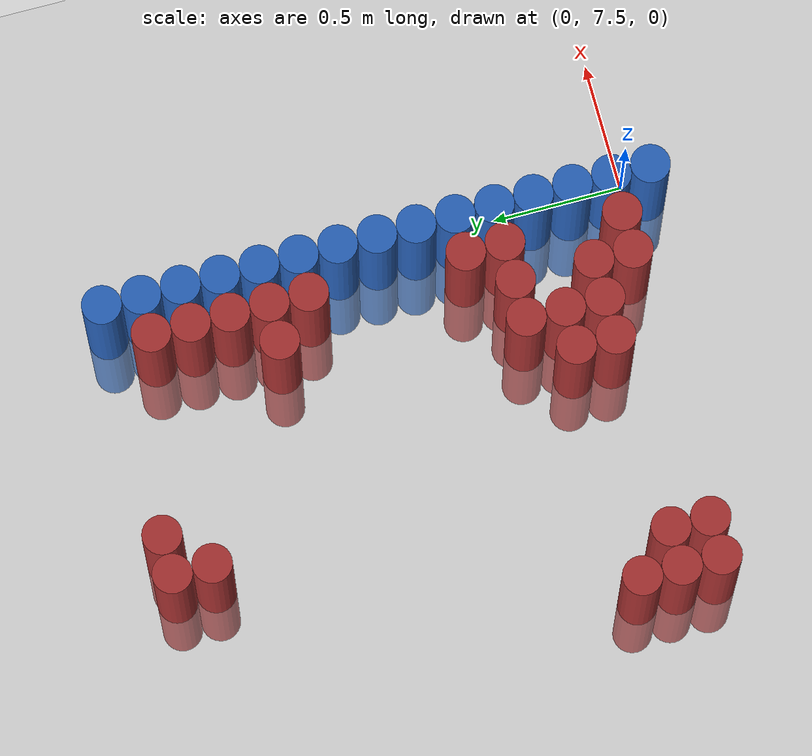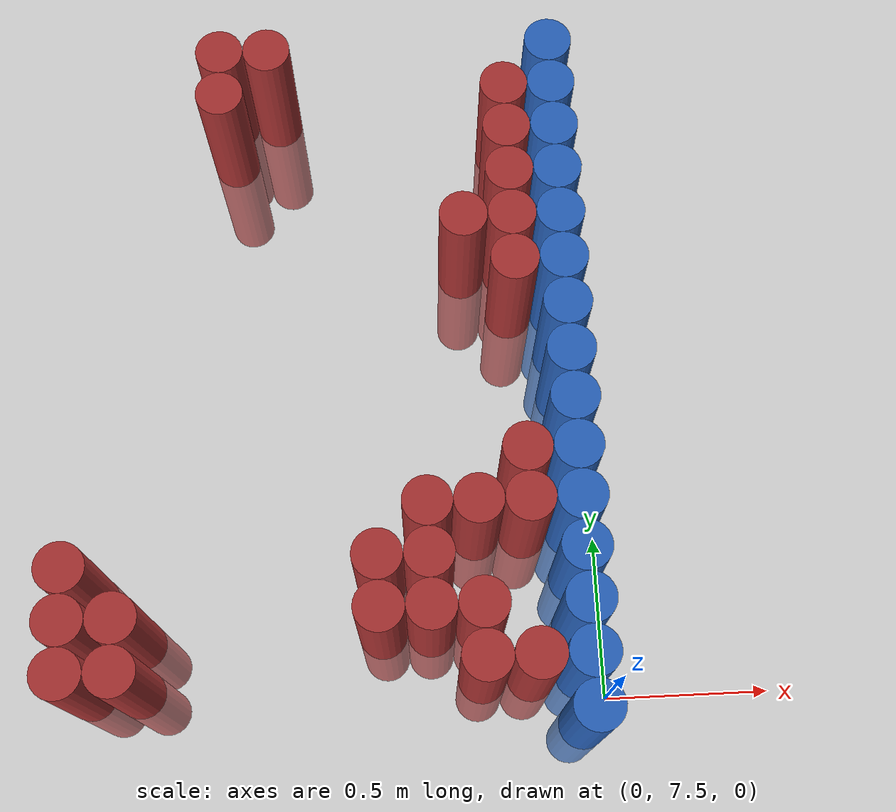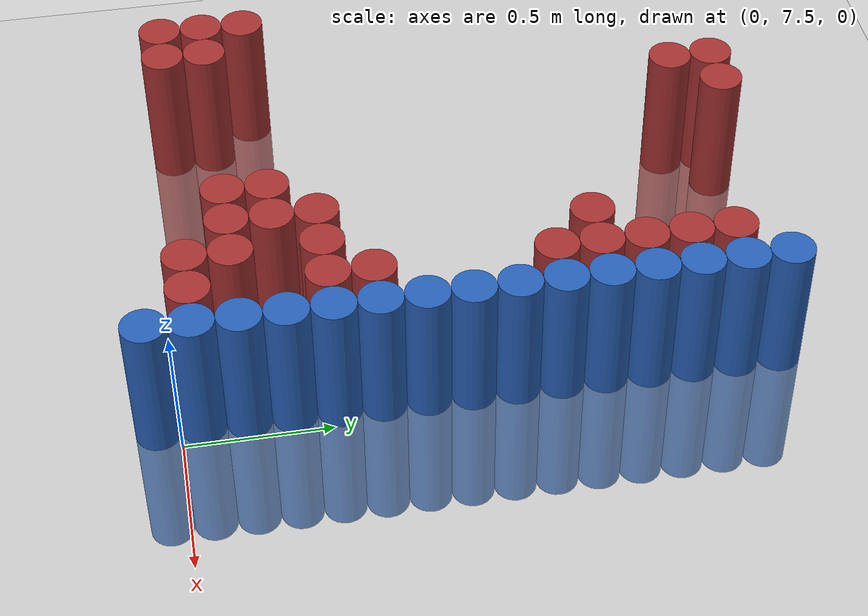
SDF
<sdf version="1.6">
 <world name="default">
  <model name="ground_plane">
   <static>1</static>
   <link name="link">
    <collision name="collision">
     <geometry><plane><normal>0 0 1</normal><size>100 100</size></plane></geometry>
     <surface><friction><ode><mu>100</mu><mu2>50</mu2></ode></friction></surface>
    </collision>
    <visual name="visual">
     <cast_shadows>0</cast_shadows>
     <geometry><plane><normal>0 0 1</normal><size>100 100</size></plane></geometry>
     <material>
      <script><uri>file://media/materials/scripts/gazebo.material</uri><name>Gazebo/Grey</name></script>
     </material>
    </visual>
   </link>
  </model>
  <model name="unit_cylinder_207">
   <static>1</static>
   <pose>-1.575000 7.575000 0.000000 0.000000 0.000000 0.000000</pose>
   <link name="link">
    <inertial>
     <mass>1</mass>
     <inertia><ixx>0.145833</ixx><ixy>0</ixy><ixz>0</ixz><iyy>0.145833</iyy><iyz>0</iyz><izz>0.125</izz></inertia>
    </inertial>
    <collision name="collision">
     <geometry><cylinder><radius>0.075000</radius><length>1</length></cylinder></geometry>
    </collision>
    <visual name="visual">
     <geometry><cylinder><radius>0.075000</radius><length>1</length></cylinder></geometry>
     <material>
      <ambient>0.648000 0.192000 0.192000 1</ambient>
      <diffuse>0.648000 0.192000 0.192000 1</diffuse>
     </material>
     <material>
      <script><name>Gazebo/Grey</name><uri>file://media/materials/scripts/gazebo.material</uri></script>
     </material>
    </visual>
    <sensor name="sensor_contact" type="contact"><contact><collision>collision</collision></contact></sensor>
   </link>
   <plugin filename="gz-sim-touchplugin-system" name="gz::sim::systems::TouchPlugin">
    <target>robot</target>
    <namespace>robot</namespace>
    <time>0.001</time>
    <enabled>true</enabled>
   </plugin>
  </model>
  <model name="unit_cylinder_208">
   <static>1</static>
   <pose>-1.575000 7.725000 0.000000 0.000000 0.000000 0.000000</pose>
   <link name="link">
    <inertial>
     <mass>1</mass>
     <inertia><ixx>0.145833</ixx><ixy>0</ixy><ixz>0</ixz><iyy>0.145833</iyy><iyz>0</iyz><izz>0.125</izz></inertia>
    </inertial>
    <collision name="collision">
     <geometry><cylinder><radius>0.075000</radius><length>1</length></cylinder></geometry>
    </collision>
    <visual name="visual">
     <geometry><cylinder><radius>0.075000</radius><length>1</length></cylinder></geometry>
     <material>
      <ambient>0.648000 0.192000 0.192000 1</ambient>
      <diffuse>0.648000 0.192000 0.192000 1</diffuse>
     </material>
     <material>
      <script><name>Gazebo/Grey</name><uri>file://media/materials/scripts/gazebo.material</uri></script>
     </material>
    </visual>
    <sensor name="sensor_contact" type="contact"><contact><collision>collision</collision></contact></sensor>
   </link>
   <plugin filename="gz-sim-touchplugin-system" name="gz::sim::systems::TouchPlugin">
    <target>robot</target>
    <namespace>robot</namespace>
    <time>0.001</time>
    <enabled>true</enabled>
   </plugin>
  </model>
  <model name="unit_cylinder_209">
   <static>1</static>
   <pose>-1.575000 7.875000 0.000000 0.000000 0.000000 0.000000</pose>
   <link name="link">
    <inertial>
     <mass>1</mass>
     <inertia><ixx>0.145833</ixx><ixy>0</ixy><ixz>0</ixz><iyy>0.145833</iyy><iyz>0</iyz><izz>0.125</izz></inertia>
    </inertial>
    <collision name="collision">
     <geometry><cylinder><radius>0.075000</radius><length>1</length></cylinder></geometry>
    </collision>
    <visual name="visual">
     <geometry><cylinder><radius>0.075000</radius><length>1</length></cylinder></geometry>
     <material>
      <ambient>0.648000 0.192000 0.192000 1</ambient>
      <diffuse>0.648000 0.192000 0.192000 1</diffuse>
     </material>
     <material>
      <script><name>Gazebo/Grey</name><uri>file://media/materials/scripts/gazebo.material</uri></script>
     </material>
    </visual>
    <sensor name="sensor_contact" type="contact"><contact><collision>collision</collision></contact></sensor>
   </link>
   <plugin filename="gz-sim-touchplugin-system" name="gz::sim::systems::TouchPlugin">
    <target>robot</target>
    <namespace>robot</namespace>
    <time>0.001</time>
    <enabled>true</enabled>
   </plugin>
  </model>
  <model name="unit_cylinder_214">
   <static>1</static>
   <pose>-1.425000 7.575000 0.000000 0.000000 0.000000 0.000000</pose>
   <link name="link">
    <inertial>
     <mass>1</mass>
     <inertia><ixx>0.145833</ixx><ixy>0</ixy><ixz>0</ixz><iyy>0.145833</iyy><iyz>0</iyz><izz>0.125</izz></inertia>
    </inertial>
    <collision name="collision">
     <geometry><cylinder><radius>0.075000</radius><length>1</length></cylinder></geometry>
    </collision>
    <visual name="visual">
     <geometry><cylinder><radius>0.075000</radius><length>1</length></cylinder></geometry>
     <material>
      <ambient>0.648000 0.192000 0.192000 1</ambient>
      <diffuse>0.648000 0.192000 0.192000 1</diffuse>
     </material>
     <material>
      <script><name>Gazebo/Grey</name><uri>file://media/materials/scripts/gazebo.material</uri></script>
     </material>
    </visual>
    <sensor name="sensor_contact" type="contact"><contact><collision>collision</collision></contact></sensor>
   </link>
   <plugin filename="gz-sim-touchplugin-system" name="gz::sim::systems::TouchPlugin">
    <target>robot</target>
    <namespace>robot</namespace>
    <time>0.001</time>
    <enabled>true</enabled>
   </plugin>
  </model>
  <model name="unit_cylinder_215">
   <static>1</static>
   <pose>-1.425000 7.725000 0.000000 0.000000 0.000000 0.000000</pose>
   <link name="link">
    <inertial>
     <mass>1</mass>
     <inertia><ixx>0.145833</ixx><ixy>0</ixy><ixz>0</ixz><iyy>0.145833</iyy><iyz>0</iyz><izz>0.125</izz></inertia>
    </inertial>
    <collision name="collision">
     <geometry><cylinder><radius>0.075000</radius><length>1</length></cylinder></geometry>
    </collision>
    <visual name="visual">
     <geometry><cylinder><radius>0.075000</radius><length>1</length></cylinder></geometry>
     <material>
      <ambient>0.648000 0.192000 0.192000 1</ambient>
      <diffuse>0.648000 0.192000 0.192000 1</diffuse>
     </material>
     <material>
      <script><name>Gazebo/Grey</name><uri>file://media/materials/scripts/gazebo.material</uri></script>
     </material>
    </visual>
    <sensor name="sensor_contact" type="contact"><contact><collision>collision</collision></contact></sensor>
   </link>
   <plugin filename="gz-sim-touchplugin-system" name="gz::sim::systems::TouchPlugin">
    <target>robot</target>
    <namespace>robot</namespace>
    <time>0.001</time>
    <enabled>true</enabled>
   </plugin>
  </model>
  <model name="unit_cylinder_223">
   <static>1</static>
   <pose>-1.125000 9.375000 0.000000 0.000000 0.000000 0.000000</pose>
   <link name="link">
    <inertial>
     <mass>1</mass>
     <inertia><ixx>0.145833</ixx><ixy>0</ixy><ixz>0</ixz><iyy>0.145833</iyy><iyz>0</iyz><izz>0.125</izz></inertia>
    </inertial>
    <collision name="collision">
     <geometry><cylinder><radius>0.075000</radius><length>1</length></cylinder></geometry>
    </collision>
    <visual name="visual">
     <geometry><cylinder><radius>0.075000</radius><length>1</length></cylinder></geometry>
     <material>
      <ambient>0.648000 0.192000 0.192000 1</ambient>
      <diffuse>0.648000 0.192000 0.192000 1</diffuse>
     </material>
     <material>
      <script><name>Gazebo/Grey</name><uri>file://media/materials/scripts/gazebo.material</uri></script>
     </material>
    </visual>
    <sensor name="sensor_contact" type="contact"><contact><collision>collision</collision></contact></sensor>
   </link>
   <plugin filename="gz-sim-touchplugin-system" name="gz::sim::systems::TouchPlugin">
    <target>robot</target>
    <namespace>robot</namespace>
    <time>0.001</time>
    <enabled>true</enabled>
   </plugin>
  </model>
  <model name="unit_cylinder_224">
   <static>1</static>
   <pose>-1.125000 9.525000 0.000000 0.000000 0.000000 0.000000</pose>
   <link name="link">
    <inertial>
     <mass>1</mass>
     <inertia><ixx>0.145833</ixx><ixy>0</ixy><ixz>0</ixz><iyy>0.145833</iyy><iyz>0</iyz><izz>0.125</izz></inertia>
    </inertial>
    <collision name="collision">
     <geometry><cylinder><radius>0.075000</radius><length>1</length></cylinder></geometry>
    </collision>
    <visual name="visual">
     <geometry><cylinder><radius>0.075000</radius><length>1</length></cylinder></geometry>
     <material>
      <ambient>0.648000 0.192000 0.192000 1</ambient>
      <diffuse>0.648000 0.192000 0.192000 1</diffuse>
     </material>
     <material>
      <script><name>Gazebo/Grey</name><uri>file://media/materials/scripts/gazebo.material</uri></script>
     </material>
    </visual>
    <sensor name="sensor_contact" type="contact"><contact><collision>collision</collision></contact></sensor>
   </link>
   <plugin filename="gz-sim-touchplugin-system" name="gz::sim::systems::TouchPlugin">
    <target>robot</target>
    <namespace>robot</namespace>
    <time>0.001</time>
    <enabled>true</enabled>
   </plugin>
  </model>
  <model name="unit_cylinder_233">
   <static>1</static>
   <pose>-0.975000 9.525000 0.000000 0.000000 0.000000 0.000000</pose>
   <link name="link">
    <inertial>
     <mass>1</mass>
     <inertia><ixx>0.145833</ixx><ixy>0</ixy><ixz>0</ixz><iyy>0.145833</iyy><iyz>0</iyz><izz>0.125</izz></inertia>
    </inertial>
    <collision name="collision">
     <geometry><cylinder><radius>0.075000</radius><length>1</length></cylinder></geometry>
    </collision>
    <visual name="visual">
     <geometry><cylinder><radius>0.075000</radius><length>1</length></cylinder></geometry>
     <material>
      <ambient>0.648000 0.192000 0.192000 1</ambient>
      <diffuse>0.648000 0.192000 0.192000 1</diffuse>
     </material>
     <material>
      <script><name>Gazebo/Grey</name><uri>file://media/materials/scripts/gazebo.material</uri></script>
     </material>
    </visual>
    <sensor name="sensor_contact" type="contact"><contact><collision>collision</collision></contact></sensor>
   </link>
   <plugin filename="gz-sim-touchplugin-system" name="gz::sim::systems::TouchPlugin">
    <target>robot</target>
    <namespace>robot</namespace>
    <time>0.001</time>
    <enabled>true</enabled>
   </plugin>
  </model>
  <model name="unit_cylinder_250">
   <static>1</static>
   <pose>-0.675000 7.725000 0.000000 0.000000 0.000000 0.000000</pose>
   <link name="link">
    <inertial>
     <mass>1</mass>
     <inertia><ixx>0.145833</ixx><ixy>0</ixy><ixz>0</ixz><iyy>0.145833</iyy><iyz>0</iyz><izz>0.125</izz></inertia>
    </inertial>
    <collision name="collision">
     <geometry><cylinder><radius>0.075000</radius><length>1</length></cylinder></geometry>
    </collision>
    <visual name="visual">
     <geometry><cylinder><radius>0.075000</radius><length>1</length></cylinder></geometry>
     <material>
      <ambient>0.648000 0.192000 0.192000 1</ambient>
      <diffuse>0.648000 0.192000 0.192000 1</diffuse>
     </material>
     <material>
      <script><name>Gazebo/Grey</name><uri>file://media/materials/scripts/gazebo.material</uri></script>
     </material>
    </visual>
    <sensor name="sensor_contact" type="contact"><contact><collision>collision</collision></contact></sensor>
   </link>
   <plugin filename="gz-sim-touchplugin-system" name="gz::sim::systems::TouchPlugin">
    <target>robot</target>
    <namespace>robot</namespace>
    <time>0.001</time>
    <enabled>true</enabled>
   </plugin>
  </model>
  <model name="unit_cylinder_251">
   <static>1</static>
   <pose>-0.675000 7.875000 0.000000 0.000000 0.000000 0.000000</pose>
   <link name="link">
    <inertial>
     <mass>1</mass>
     <inertia><ixx>0.145833</ixx><ixy>0</ixy><ixz>0</ixz><iyy>0.145833</iyy><iyz>0</iyz><izz>0.125</izz></inertia>
    </inertial>
    <collision name="collision">
     <geometry><cylinder><radius>0.075000</radius><length>1</length></cylinder></geometry>
    </collision>
    <visual name="visual">
     <geometry><cylinder><radius>0.075000</radius><length>1</length></cylinder></geometry>
     <material>
      <ambient>0.648000 0.192000 0.192000 1</ambient>
      <diffuse>0.648000 0.192000 0.192000 1</diffuse>
     </material>
     <material>
      <script><name>Gazebo/Grey</name><uri>file://media/materials/scripts/gazebo.material</uri></script>
     </material>
    </visual>
    <sensor name="sensor_contact" type="contact"><contact><collision>collision</collision></contact></sensor>
   </link>
   <plugin filename="gz-sim-touchplugin-system" name="gz::sim::systems::TouchPlugin">
    <target>robot</target>
    <namespace>robot</namespace>
    <time>0.001</time>
    <enabled>true</enabled>
   </plugin>
  </model>
  <model name="unit_cylinder_255">
   <static>1</static>
   <pose>-0.525000 7.725000 0.000000 0.000000 0.000000 0.000000</pose>
   <link name="link">
    <inertial>
     <mass>1</mass>
     <inertia><ixx>0.145833</ixx><ixy>0</ixy><ixz>0</ixz><iyy>0.145833</iyy><iyz>0</iyz><izz>0.125</izz></inertia>
    </inertial>
    <collision name="collision">
     <geometry><cylinder><radius>0.075000</radius><length>1</length></cylinder></geometry>
    </collision>
    <visual name="visual">
     <geometry><cylinder><radius>0.075000</radius><length>1</length></cylinder></geometry>
     <material>
      <ambient>0.648000 0.192000 0.192000 1</ambient>
      <diffuse>0.648000 0.192000 0.192000 1</diffuse>
     </material>
     <material>
      <script><name>Gazebo/Grey</name><uri>file://media/materials/scripts/gazebo.material</uri></script>
     </material>
    </visual>
    <sensor name="sensor_contact" type="contact"><contact><collision>collision</collision></contact></sensor>
   </link>
   <plugin filename="gz-sim-touchplugin-system" name="gz::sim::systems::TouchPlugin">
    <target>robot</target>
    <namespace>robot</namespace>
    <time>0.001</time>
    <enabled>true</enabled>
   </plugin>
  </model>
  <model name="unit_cylinder_256">
   <static>1</static>
   <pose>-0.525000 7.875000 0.000000 0.000000 0.000000 0.000000</pose>
   <link name="link">
    <inertial>
     <mass>1</mass>
     <inertia><ixx>0.145833</ixx><ixy>0</ixy><ixz>0</ixz><iyy>0.145833</iyy><iyz>0</iyz><izz>0.125</izz></inertia>
    </inertial>
    <collision name="collision">
     <geometry><cylinder><radius>0.075000</radius><length>1</length></cylinder></geometry>
    </collision>
    <visual name="visual">
     <geometry><cylinder><radius>0.075000</radius><length>1</length></cylinder></geometry>
     <material>
      <ambient>0.648000 0.192000 0.192000 1</ambient>
      <diffuse>0.648000 0.192000 0.192000 1</diffuse>
     </material>
     <material>
      <script><name>Gazebo/Grey</name><uri>file://media/materials/scripts/gazebo.material</uri></script>
     </material>
    </visual>
    <sensor name="sensor_contact" type="contact"><contact><collision>collision</collision></contact></sensor>
   </link>
   <plugin filename="gz-sim-touchplugin-system" name="gz::sim::systems::TouchPlugin">
    <target>robot</target>
    <namespace>robot</namespace>
    <time>0.001</time>
    <enabled>true</enabled>
   </plugin>
  </model>
  <model name="unit_cylinder_257">
   <static>1</static>
   <pose>-0.525000 8.025000 0.000000 0.000000 0.000000 0.000000</pose>
   <link name="link">
    <inertial>
     <mass>1</mass>
     <inertia><ixx>0.145833</ixx><ixy>0</ixy><ixz>0</ixz><iyy>0.145833</iyy><iyz>0</iyz><izz>0.125</izz></inertia>
    </inertial>
    <collision name="collision">
     <geometry><cylinder><radius>0.075000</radius><length>1</length></cylinder></geometry>
    </collision>
    <visual name="visual">
     <geometry><cylinder><radius>0.075000</radius><length>1</length></cylinder></geometry>
     <material>
      <ambient>0.648000 0.192000 0.192000 1</ambient>
      <diffuse>0.648000 0.192000 0.192000 1</diffuse>
     </material>
     <material>
      <script><name>Gazebo/Grey</name><uri>file://media/materials/scripts/gazebo.material</uri></script>
     </material>
    </visual>
    <sensor name="sensor_contact" type="contact"><contact><collision>collision</collision></contact></sensor>
   </link>
   <plugin filename="gz-sim-touchplugin-system" name="gz::sim::systems::TouchPlugin">
    <target>robot</target>
    <namespace>robot</namespace>
    <time>0.001</time>
    <enabled>true</enabled>
   </plugin>
  </model>
  <model name="unit_cylinder_263">
   <static>1</static>
   <pose>-0.375000 7.575000 0.000000 0.000000 0.000000 0.000000</pose>
   <link name="link">
    <inertial>
     <mass>1</mass>
     <inertia><ixx>0.145833</ixx><ixy>0</ixy><ixz>0</ixz><iyy>0.145833</iyy><iyz>0</iyz><izz>0.125</izz></inertia>
    </inertial>
    <collision name="collision">
     <geometry><cylinder><radius>0.075000</radius><length>1</length></cylinder></geometry>
    </collision>
    <visual name="visual">
     <geometry><cylinder><radius>0.075000</radius><length>1</length></cylinder></geometry>
     <material>
      <ambient>0.648000 0.192000 0.192000 1</ambient>
      <diffuse>0.648000 0.192000 0.192000 1</diffuse>
     </material>
     <material>
      <script><name>Gazebo/Grey</name><uri>file://media/materials/scripts/gazebo.material</uri></script>
     </material>
    </visual>
    <sensor name="sensor_contact" type="contact"><contact><collision>collision</collision></contact></sensor>
   </link>
   <plugin filename="gz-sim-touchplugin-system" name="gz::sim::systems::TouchPlugin">
    <target>robot</target>
    <namespace>robot</namespace>
    <time>0.001</time>
    <enabled>true</enabled>
   </plugin>
  </model>
  <model name="unit_cylinder_264">
   <static>1</static>
   <pose>-0.375000 7.725000 0.000000 0.000000 0.000000 0.000000</pose>
   <link name="link">
    <inertial>
     <mass>1</mass>
     <inertia><ixx>0.145833</ixx><ixy>0</ixy><ixz>0</ixz><iyy>0.145833</iyy><iyz>0</iyz><izz>0.125</izz></inertia>
    </inertial>
    <collision name="collision">
     <geometry><cylinder><radius>0.075000</radius><length>1</length></cylinder></geometry>
    </collision>
    <visual name="visual">
     <geometry><cylinder><radius>0.075000</radius><length>1</length></cylinder></geometry>
     <material>
      <ambient>0.648000 0.192000 0.192000 1</ambient>
      <diffuse>0.648000 0.192000 0.192000 1</diffuse>
     </material>
     <material>
      <script><name>Gazebo/Grey</name><uri>file://media/materials/scripts/gazebo.material</uri></script>
     </material>
    </visual>
    <sensor name="sensor_contact" type="contact"><contact><collision>collision</collision></contact></sensor>
   </link>
   <plugin filename="gz-sim-touchplugin-system" name="gz::sim::systems::TouchPlugin">
    <target>robot</target>
    <namespace>robot</namespace>
    <time>0.001</time>
    <enabled>true</enabled>
   </plugin>
  </model>
  <model name="unit_cylinder_265">
   <static>1</static>
   <pose>-0.375000 8.025000 0.000000 0.000000 0.000000 0.000000</pose>
   <link name="link">
    <inertial>
     <mass>1</mass>
     <inertia><ixx>0.145833</ixx><ixy>0</ixy><ixz>0</ixz><iyy>0.145833</iyy><iyz>0</iyz><izz>0.125</izz></inertia>
    </inertial>
    <collision name="collision">
     <geometry><cylinder><radius>0.075000</radius><length>1</length></cylinder></geometry>
    </collision>
    <visual name="visual">
     <geometry><cylinder><radius>0.075000</radius><length>1</length></cylinder></geometry>
     <material>
      <ambient>0.648000 0.192000 0.192000 1</ambient>
      <diffuse>0.648000 0.192000 0.192000 1</diffuse>
     </material>
     <material>
      <script><name>Gazebo/Grey</name><uri>file://media/materials/scripts/gazebo.material</uri></script>
     </material>
    </visual>
    <sensor name="sensor_contact" type="contact"><contact><collision>collision</collision></contact></sensor>
   </link>
   <plugin filename="gz-sim-touchplugin-system" name="gz::sim::systems::TouchPlugin">
    <target>robot</target>
    <namespace>robot</namespace>
    <time>0.001</time>
    <enabled>true</enabled>
   </plugin>
  </model>
  <model name="unit_cylinder_266">
   <static>1</static>
   <pose>-0.375000 8.925000 0.000000 0.000000 0.000000 0.000000</pose>
   <link name="link">
    <inertial>
     <mass>1</mass>
     <inertia><ixx>0.145833</ixx><ixy>0</ixy><ixz>0</ixz><iyy>0.145833</iyy><iyz>0</iyz><izz>0.125</izz></inertia>
    </inertial>
    <collision name="collision">
     <geometry><cylinder><radius>0.075000</radius><length>1</length></cylinder></geometry>
    </collision>
    <visual name="visual">
     <geometry><cylinder><radius>0.075000</radius><length>1</length></cylinder></geometry>
     <material>
      <ambient>0.648000 0.192000 0.192000 1</ambient>
      <diffuse>0.648000 0.192000 0.192000 1</diffuse>
     </material>
     <material>
      <script><name>Gazebo/Grey</name><uri>file://media/materials/scripts/gazebo.material</uri></script>
     </material>
    </visual>
    <sensor name="sensor_contact" type="contact"><contact><collision>collision</collision></contact></sensor>
   </link>
   <plugin filename="gz-sim-touchplugin-system" name="gz::sim::systems::TouchPlugin">
    <target>robot</target>
    <namespace>robot</namespace>
    <time>0.001</time>
    <enabled>true</enabled>
   </plugin>
  </model>
  <model name="unit_cylinder_277">
   <static>1</static>
   <pose>-0.225000 7.575000 0.000000 0.000000 0.000000 0.000000</pose>
   <link name="link">
    <inertial>
     <mass>1</mass>
     <inertia><ixx>0.145833</ixx><ixy>0</ixy><ixz>0</ixz><iyy>0.145833</iyy><iyz>0</iyz><izz>0.125</izz></inertia>
    </inertial>
    <collision name="collision">
     <geometry><cylinder><radius>0.075000</radius><length>1</length></cylinder></geometry>
    </collision>
    <visual name="visual">
     <geometry><cylinder><radius>0.075000</radius><length>1</length></cylinder></geometry>
     <material>
      <ambient>0.648000 0.192000 0.192000 1</ambient>
      <diffuse>0.648000 0.192000 0.192000 1</diffuse>
     </material>
     <material>
      <script><name>Gazebo/Grey</name><uri>file://media/materials/scripts/gazebo.material</uri></script>
     </material>
    </visual>
    <sensor name="sensor_contact" type="contact"><contact><collision>collision</collision></contact></sensor>
   </link>
   <plugin filename="gz-sim-touchplugin-system" name="gz::sim::systems::TouchPlugin">
    <target>robot</target>
    <namespace>robot</namespace>
    <time>0.001</time>
    <enabled>true</enabled>
   </plugin>
  </model>
  <model name="unit_cylinder_278">
   <static>1</static>
   <pose>-0.225000 8.025000 0.000000 0.000000 0.000000 0.000000</pose>
   <link name="link">
    <inertial>
     <mass>1</mass>
     <inertia><ixx>0.145833</ixx><ixy>0</ixy><ixz>0</ixz><iyy>0.145833</iyy><iyz>0</iyz><izz>0.125</izz></inertia>
    </inertial>
    <collision name="collision">
     <geometry><cylinder><radius>0.075000</radius><length>1</length></cylinder></geometry>
    </collision>
    <visual name="visual">
     <geometry><cylinder><radius>0.075000</radius><length>1</length></cylinder></geometry>
     <material>
      <ambient>0.648000 0.192000 0.192000 1</ambient>
      <diffuse>0.648000 0.192000 0.192000 1</diffuse>
     </material>
     <material>
      <script><name>Gazebo/Grey</name><uri>file://media/materials/scripts/gazebo.material</uri></script>
     </material>
    </visual>
    <sensor name="sensor_contact" type="contact"><contact><collision>collision</collision></contact></sensor>
   </link>
   <plugin filename="gz-sim-touchplugin-system" name="gz::sim::systems::TouchPlugin">
    <target>robot</target>
    <namespace>robot</namespace>
    <time>0.001</time>
    <enabled>true</enabled>
   </plugin>
  </model>
  <model name="unit_cylinder_279">
   <static>1</static>
   <pose>-0.225000 8.175000 0.000000 0.000000 0.000000 0.000000</pose>
   <link name="link">
    <inertial>
     <mass>1</mass>
     <inertia><ixx>0.145833</ixx><ixy>0</ixy><ixz>0</ixz><iyy>0.145833</iyy><iyz>0</iyz><izz>0.125</izz></inertia>
    </inertial>
    <collision name="collision">
     <geometry><cylinder><radius>0.075000</radius><length>1</length></cylinder></geometry>
    </collision>
    <visual name="visual">
     <geometry><cylinder><radius>0.075000</radius><length>1</length></cylinder></geometry>
     <material>
      <ambient>0.648000 0.192000 0.192000 1</ambient>
      <diffuse>0.648000 0.192000 0.192000 1</diffuse>
     </material>
     <material>
      <script><name>Gazebo/Grey</name><uri>file://media/materials/scripts/gazebo.material</uri></script>
     </material>
    </visual>
    <sensor name="sensor_contact" type="contact"><contact><collision>collision</collision></contact></sensor>
   </link>
   <plugin filename="gz-sim-touchplugin-system" name="gz::sim::systems::TouchPlugin">
    <target>robot</target>
    <namespace>robot</namespace>
    <time>0.001</time>
    <enabled>true</enabled>
   </plugin>
  </model>
  <model name="unit_cylinder_280">
   <static>1</static>
   <pose>-0.225000 8.775000 0.000000 0.000000 0.000000 0.000000</pose>
   <link name="link">
    <inertial>
     <mass>1</mass>
     <inertia><ixx>0.145833</ixx><ixy>0</ixy><ixz>0</ixz><iyy>0.145833</iyy><iyz>0</iyz><izz>0.125</izz></inertia>
    </inertial>
    <collision name="collision">
     <geometry><cylinder><radius>0.075000</radius><length>1</length></cylinder></geometry>
    </collision>
    <visual name="visual">
     <geometry><cylinder><radius>0.075000</radius><length>1</length></cylinder></geometry>
     <material>
      <ambient>0.648000 0.192000 0.192000 1</ambient>
      <diffuse>0.648000 0.192000 0.192000 1</diffuse>
     </material>
     <material>
      <script><name>Gazebo/Grey</name><uri>file://media/materials/scripts/gazebo.material</uri></script>
     </material>
    </visual>
    <sensor name="sensor_contact" type="contact"><contact><collision>collision</collision></contact></sensor>
   </link>
   <plugin filename="gz-sim-touchplugin-system" name="gz::sim::systems::TouchPlugin">
    <target>robot</target>
    <namespace>robot</namespace>
    <time>0.001</time>
    <enabled>true</enabled>
   </plugin>
  </model>
  <model name="unit_cylinder_281">
   <static>1</static>
   <pose>-0.225000 8.925000 0.000000 0.000000 0.000000 0.000000</pose>
   <link name="link">
    <inertial>
     <mass>1</mass>
     <inertia><ixx>0.145833</ixx><ixy>0</ixy><ixz>0</ixz><iyy>0.145833</iyy><iyz>0</iyz><izz>0.125</izz></inertia>
    </inertial>
    <collision name="collision">
     <geometry><cylinder><radius>0.075000</radius><length>1</length></cylinder></geometry>
    </collision>
    <visual name="visual">
     <geometry><cylinder><radius>0.075000</radius><length>1</length></cylinder></geometry>
     <material>
      <ambient>0.648000 0.192000 0.192000 1</ambient>
      <diffuse>0.648000 0.192000 0.192000 1</diffuse>
     </material>
     <material>
      <script><name>Gazebo/Grey</name><uri>file://media/materials/scripts/gazebo.material</uri></script>
     </material>
    </visual>
    <sensor name="sensor_contact" type="contact"><contact><collision>collision</collision></contact></sensor>
   </link>
   <plugin filename="gz-sim-touchplugin-system" name="gz::sim::systems::TouchPlugin">
    <target>robot</target>
    <namespace>robot</namespace>
    <time>0.001</time>
    <enabled>true</enabled>
   </plugin>
  </model>
  <model name="unit_cylinder_282">
   <static>1</static>
   <pose>-0.225000 9.075000 0.000000 0.000000 0.000000 0.000000</pose>
   <link name="link">
    <inertial>
     <mass>1</mass>
     <inertia><ixx>0.145833</ixx><ixy>0</ixy><ixz>0</ixz><iyy>0.145833</iyy><iyz>0</iyz><izz>0.125</izz></inertia>
    </inertial>
    <collision name="collision">
     <geometry><cylinder><radius>0.075000</radius><length>1</length></cylinder></geometry>
    </collision>
    <visual name="visual">
     <geometry><cylinder><radius>0.075000</radius><length>1</length></cylinder></geometry>
     <material>
      <ambient>0.648000 0.192000 0.192000 1</ambient>
      <diffuse>0.648000 0.192000 0.192000 1</diffuse>
     </material>
     <material>
      <script><name>Gazebo/Grey</name><uri>file://media/materials/scripts/gazebo.material</uri></script>
     </material>
    </visual>
    <sensor name="sensor_contact" type="contact"><contact><collision>collision</collision></contact></sensor>
   </link>
   <plugin filename="gz-sim-touchplugin-system" name="gz::sim::systems::TouchPlugin">
    <target>robot</target>
    <namespace>robot</namespace>
    <time>0.001</time>
    <enabled>true</enabled>
   </plugin>
  </model>
  <model name="unit_cylinder_283">
   <static>1</static>
   <pose>-0.225000 9.225000 0.000000 0.000000 0.000000 0.000000</pose>
   <link name="link">
    <inertial>
     <mass>1</mass>
     <inertia><ixx>0.145833</ixx><ixy>0</ixy><ixz>0</ixz><iyy>0.145833</iyy><iyz>0</iyz><izz>0.125</izz></inertia>
    </inertial>
    <collision name="collision">
     <geometry><cylinder><radius>0.075000</radius><length>1</length></cylinder></geometry>
    </collision>
    <visual name="visual">
     <geometry><cylinder><radius>0.075000</radius><length>1</length></cylinder></geometry>
     <material>
      <ambient>0.648000 0.192000 0.192000 1</ambient>
      <diffuse>0.648000 0.192000 0.192000 1</diffuse>
     </material>
     <material>
      <script><name>Gazebo/Grey</name><uri>file://media/materials/scripts/gazebo.material</uri></script>
     </material>
    </visual>
    <sensor name="sensor_contact" type="contact"><contact><collision>collision</collision></contact></sensor>
   </link>
   <plugin filename="gz-sim-touchplugin-system" name="gz::sim::systems::TouchPlugin">
    <target>robot</target>
    <namespace>robot</namespace>
    <time>0.001</time>
    <enabled>true</enabled>
   </plugin>
  </model>
  <model name="unit_cylinder_284">
   <static>1</static>
   <pose>-0.225000 9.375000 0.000000 0.000000 0.000000 0.000000</pose>
   <link name="link">
    <inertial>
     <mass>1</mass>
     <inertia><ixx>0.145833</ixx><ixy>0</ixy><ixz>0</ixz><iyy>0.145833</iyy><iyz>0</iyz><izz>0.125</izz></inertia>
    </inertial>
    <collision name="collision">
     <geometry><cylinder><radius>0.075000</radius><length>1</length></cylinder></geometry>
    </collision>
    <visual name="visual">
     <geometry><cylinder><radius>0.075000</radius><length>1</length></cylinder></geometry>
     <material>
      <ambient>0.648000 0.192000 0.192000 1</ambient>
      <diffuse>0.648000 0.192000 0.192000 1</diffuse>
     </material>
     <material>
      <script><name>Gazebo/Grey</name><uri>file://media/materials/scripts/gazebo.material</uri></script>
     </material>
    </visual>
    <sensor name="sensor_contact" type="contact"><contact><collision>collision</collision></contact></sensor>
   </link>
   <plugin filename="gz-sim-touchplugin-system" name="gz::sim::systems::TouchPlugin">
    <target>robot</target>
    <namespace>robot</namespace>
    <time>0.001</time>
    <enabled>true</enabled>
   </plugin>
  </model>
  <model name="unit_cylinder_300">
   <static>1</static>
   <pose>-0.075000 7.425000 0.000000 0.000000 0.000000 0.000000</pose>
   <link name="link">
    <inertial>
     <mass>1</mass>
     <inertia><ixx>0.145833</ixx><ixy>0</ixy><ixz>0</ixz><iyy>0.145833</iyy><iyz>0</iyz><izz>0.125</izz></inertia>
    </inertial>
    <collision name="collision">
     <geometry><cylinder><radius>0.075000</radius><length>1</length></cylinder></geometry>
    </collision>
    <visual name="visual">
     <geometry><cylinder><radius>0.075000</radius><length>1</length></cylinder></geometry>
     <material>
      <ambient>0.152000 0.379000 0.720000 1</ambient>
      <diffuse>0.152000 0.379000 0.720000 1</diffuse>
     </material>
     <material>
      <script><name>Gazebo/Grey</name><uri>file://media/materials/scripts/gazebo.material</uri></script>
     </material>
    </visual>
    <sensor name="sensor_contact" type="contact"><contact><collision>collision</collision></contact></sensor>
   </link>
   <plugin filename="gz-sim-touchplugin-system" name="gz::sim::systems::TouchPlugin">
    <target>robot</target>
    <namespace>robot</namespace>
    <time>0.001</time>
    <enabled>true</enabled>
   </plugin>
  </model>
  <model name="unit_cylinder_301">
   <static>1</static>
   <pose>-0.075000 7.575000 0.000000 0.000000 0.000000 0.000000</pose>
   <link name="link">
    <inertial>
     <mass>1</mass>
     <inertia><ixx>0.145833</ixx><ixy>0</ixy><ixz>0</ixz><iyy>0.145833</iyy><iyz>0</iyz><izz>0.125</izz></inertia>
    </inertial>
    <collision name="collision">
     <geometry><cylinder><radius>0.075000</radius><length>1</length></cylinder></geometry>
    </collision>
    <visual name="visual">
     <geometry><cylinder><radius>0.075000</radius><length>1</length></cylinder></geometry>
     <material>
      <ambient>0.152000 0.379000 0.720000 1</ambient>
      <diffuse>0.152000 0.379000 0.720000 1</diffuse>
     </material>
     <material>
      <script><name>Gazebo/Grey</name><uri>file://media/materials/scripts/gazebo.material</uri></script>
     </material>
    </visual>
    <sensor name="sensor_contact" type="contact"><contact><collision>collision</collision></contact></sensor>
   </link>
   <plugin filename="gz-sim-touchplugin-system" name="gz::sim::systems::TouchPlugin">
    <target>robot</target>
    <namespace>robot</namespace>
    <time>0.001</time>
    <enabled>true</enabled>
   </plugin>
  </model>
  <model name="unit_cylinder_302">
   <static>1</static>
   <pose>-0.075000 7.725000 0.000000 0.000000 0.000000 0.000000</pose>
   <link name="link">
    <inertial>
     <mass>1</mass>
     <inertia><ixx>0.145833</ixx><ixy>0</ixy><ixz>0</ixz><iyy>0.145833</iyy><iyz>0</iyz><izz>0.125</izz></inertia>
    </inertial>
    <collision name="collision">
     <geometry><cylinder><radius>0.075000</radius><length>1</length></cylinder></geometry>
    </collision>
    <visual name="visual">
     <geometry><cylinder><radius>0.075000</radius><length>1</length></cylinder></geometry>
     <material>
      <ambient>0.152000 0.379000 0.720000 1</ambient>
      <diffuse>0.152000 0.379000 0.720000 1</diffuse>
     </material>
     <material>
      <script><name>Gazebo/Grey</name><uri>file://media/materials/scripts/gazebo.material</uri></script>
     </material>
    </visual>
    <sensor name="sensor_contact" type="contact"><contact><collision>collision</collision></contact></sensor>
   </link>
   <plugin filename="gz-sim-touchplugin-system" name="gz::sim::systems::TouchPlugin">
    <target>robot</target>
    <namespace>robot</namespace>
    <time>0.001</time>
    <enabled>true</enabled>
   </plugin>
  </model>
  <model name="unit_cylinder_303">
   <static>1</static>
   <pose>-0.075000 7.875000 0.000000 0.000000 0.000000 0.000000</pose>
   <link name="link">
    <inertial>
     <mass>1</mass>
     <inertia><ixx>0.145833</ixx><ixy>0</ixy><ixz>0</ixz><iyy>0.145833</iyy><iyz>0</iyz><izz>0.125</izz></inertia>
    </inertial>
    <collision name="collision">
     <geometry><cylinder><radius>0.075000</radius><length>1</length></cylinder></geometry>
    </collision>
    <visual name="visual">
     <geometry><cylinder><radius>0.075000</radius><length>1</length></cylinder></geometry>
     <material>
      <ambient>0.152000 0.379000 0.720000 1</ambient>
      <diffuse>0.152000 0.379000 0.720000 1</diffuse>
     </material>
     <material>
      <script><name>Gazebo/Grey</name><uri>file://media/materials/scripts/gazebo.material</uri></script>
     </material>
    </visual>
    <sensor name="sensor_contact" type="contact"><contact><collision>collision</collision></contact></sensor>
   </link>
   <plugin filename="gz-sim-touchplugin-system" name="gz::sim::systems::TouchPlugin">
    <target>robot</target>
    <namespace>robot</namespace>
    <time>0.001</time>
    <enabled>true</enabled>
   </plugin>
  </model>
  <model name="unit_cylinder_304">
   <static>1</static>
   <pose>-0.075000 8.025000 0.000000 0.000000 0.000000 0.000000</pose>
   <link name="link">
    <inertial>
     <mass>1</mass>
     <inertia><ixx>0.145833</ixx><ixy>0</ixy><ixz>0</ixz><iyy>0.145833</iyy><iyz>0</iyz><izz>0.125</izz></inertia>
    </inertial>
    <collision name="collision">
     <geometry><cylinder><radius>0.075000</radius><length>1</length></cylinder></geometry>
    </collision>
    <visual name="visual">
     <geometry><cylinder><radius>0.075000</radius><length>1</length></cylinder></geometry>
     <material>
      <ambient>0.152000 0.379000 0.720000 1</ambient>
      <diffuse>0.152000 0.379000 0.720000 1</diffuse>
     </material>
     <material>
      <script><name>Gazebo/Grey</name><uri>file://media/materials/scripts/gazebo.material</uri></script>
     </material>
    </visual>
    <sensor name="sensor_contact" type="contact"><contact><collision>collision</collision></contact></sensor>
   </link>
   <plugin filename="gz-sim-touchplugin-system" name="gz::sim::systems::TouchPlugin">
    <target>robot</target>
    <namespace>robot</namespace>
    <time>0.001</time>
    <enabled>true</enabled>
   </plugin>
  </model>
  <model name="unit_cylinder_305">
   <static>1</static>
   <pose>-0.075000 8.175000 0.000000 0.000000 0.000000 0.000000</pose>
   <link name="link">
    <inertial>
     <mass>1</mass>
     <inertia><ixx>0.145833</ixx><ixy>0</ixy><ixz>0</ixz><iyy>0.145833</iyy><iyz>0</iyz><izz>0.125</izz></inertia>
    </inertial>
    <collision name="collision">
     <geometry><cylinder><radius>0.075000</radius><length>1</length></cylinder></geometry>
    </collision>
    <visual name="visual">
     <geometry><cylinder><radius>0.075000</radius><length>1</length></cylinder></geometry>
     <material>
      <ambient>0.152000 0.379000 0.720000 1</ambient>
      <diffuse>0.152000 0.379000 0.720000 1</diffuse>
     </material>
     <material>
      <script><name>Gazebo/Grey</name><uri>file://media/materials/scripts/gazebo.material</uri></script>
     </material>
    </visual>
    <sensor name="sensor_contact" type="contact"><contact><collision>collision</collision></contact></sensor>
   </link>
   <plugin filename="gz-sim-touchplugin-system" name="gz::sim::systems::TouchPlugin">
    <target>robot</target>
    <namespace>robot</namespace>
    <time>0.001</time>
    <enabled>true</enabled>
   </plugin>
  </model>
  <model name="unit_cylinder_306">
   <static>1</static>
   <pose>-0.075000 8.325000 0.000000 0.000000 0.000000 0.000000</pose>
   <link name="link">
    <inertial>
     <mass>1</mass>
     <inertia><ixx>0.145833</ixx><ixy>0</ixy><ixz>0</ixz><iyy>0.145833</iyy><iyz>0</iyz><izz>0.125</izz></inertia>
    </inertial>
    <collision name="collision">
     <geometry><cylinder><radius>0.075000</radius><length>1</length></cylinder></geometry>
    </collision>
    <visual name="visual">
     <geometry><cylinder><radius>0.075000</radius><length>1</length></cylinder></geometry>
     <material>
      <ambient>0.152000 0.379000 0.720000 1</ambient>
      <diffuse>0.152000 0.379000 0.720000 1</diffuse>
     </material>
     <material>
      <script><name>Gazebo/Grey</name><uri>file://media/materials/scripts/gazebo.material</uri></script>
     </material>
    </visual>
    <sensor name="sensor_contact" type="contact"><contact><collision>collision</collision></contact></sensor>
   </link>
   <plugin filename="gz-sim-touchplugin-system" name="gz::sim::systems::TouchPlugin">
    <target>robot</target>
    <namespace>robot</namespace>
    <time>0.001</time>
    <enabled>true</enabled>
   </plugin>
  </model>
  <model name="unit_cylinder_307">
   <static>1</static>
   <pose>-0.075000 8.475000 0.000000 0.000000 0.000000 0.000000</pose>
   <link name="link">
    <inertial>
     <mass>1</mass>
     <inertia><ixx>0.145833</ixx><ixy>0</ixy><ixz>0</ixz><iyy>0.145833</iyy><iyz>0</iyz><izz>0.125</izz></inertia>
    </inertial>
    <collision name="collision">
     <geometry><cylinder><radius>0.075000</radius><length>1</length></cylinder></geometry>
    </collision>
    <visual name="visual">
     <geometry><cylinder><radius>0.075000</radius><length>1</length></cylinder></geometry>
     <material>
      <ambient>0.152000 0.379000 0.720000 1</ambient>
      <diffuse>0.152000 0.379000 0.720000 1</diffuse>
     </material>
     <material>
      <script><name>Gazebo/Grey</name><uri>file://media/materials/scripts/gazebo.material</uri></script>
     </material>
    </visual>
    <sensor name="sensor_contact" type="contact"><contact><collision>collision</collision></contact></sensor>
   </link>
   <plugin filename="gz-sim-touchplugin-system" name="gz::sim::systems::TouchPlugin">
    <target>robot</target>
    <namespace>robot</namespace>
    <time>0.001</time>
    <enabled>true</enabled>
   </plugin>
  </model>
  <model name="unit_cylinder_308">
   <static>1</static>
   <pose>-0.075000 8.625000 0.000000 0.000000 0.000000 0.000000</pose>
   <link name="link">
    <inertial>
     <mass>1</mass>
     <inertia><ixx>0.145833</ixx><ixy>0</ixy><ixz>0</ixz><iyy>0.145833</iyy><iyz>0</iyz><izz>0.125</izz></inertia>
    </inertial>
    <collision name="collision">
     <geometry><cylinder><radius>0.075000</radius><length>1</length></cylinder></geometry>
    </collision>
    <visual name="visual">
     <geometry><cylinder><radius>0.075000</radius><length>1</length></cylinder></geometry>
     <material>
      <ambient>0.152000 0.379000 0.720000 1</ambient>
      <diffuse>0.152000 0.379000 0.720000 1</diffuse>
     </material>
     <material>
      <script><name>Gazebo/Grey</name><uri>file://media/materials/scripts/gazebo.material</uri></script>
     </material>
    </visual>
    <sensor name="sensor_contact" type="contact"><contact><collision>collision</collision></contact></sensor>
   </link>
   <plugin filename="gz-sim-touchplugin-system" name="gz::sim::systems::TouchPlugin">
    <target>robot</target>
    <namespace>robot</namespace>
    <time>0.001</time>
    <enabled>true</enabled>
   </plugin>
  </model>
  <model name="unit_cylinder_309">
   <static>1</static>
   <pose>-0.075000 8.775000 0.000000 0.000000 0.000000 0.000000</pose>
   <link name="link">
    <inertial>
     <mass>1</mass>
     <inertia><ixx>0.145833</ixx><ixy>0</ixy><ixz>0</ixz><iyy>0.145833</iyy><iyz>0</iyz><izz>0.125</izz></inertia>
    </inertial>
    <collision name="collision">
     <geometry><cylinder><radius>0.075000</radius><length>1</length></cylinder></geometry>
    </collision>
    <visual name="visual">
     <geometry><cylinder><radius>0.075000</radius><length>1</length></cylinder></geometry>
     <material>
      <ambient>0.152000 0.379000 0.720000 1</ambient>
      <diffuse>0.152000 0.379000 0.720000 1</diffuse>
     </material>
     <material>
      <script><name>Gazebo/Grey</name><uri>file://media/materials/scripts/gazebo.material</uri></script>
     </material>
    </visual>
    <sensor name="sensor_contact" type="contact"><contact><collision>collision</collision></contact></sensor>
   </link>
   <plugin filename="gz-sim-touchplugin-system" name="gz::sim::systems::TouchPlugin">
    <target>robot</target>
    <namespace>robot</namespace>
    <time>0.001</time>
    <enabled>true</enabled>
   </plugin>
  </model>
  <model name="unit_cylinder_310">
   <static>1</static>
   <pose>-0.075000 8.925000 0.000000 0.000000 0.000000 0.000000</pose>
   <link name="link">
    <inertial>
     <mass>1</mass>
     <inertia><ixx>0.145833</ixx><ixy>0</ixy><ixz>0</ixz><iyy>0.145833</iyy><iyz>0</iyz><izz>0.125</izz></inertia>
    </inertial>
    <collision name="collision">
     <geometry><cylinder><radius>0.075000</radius><length>1</length></cylinder></geometry>
    </collision>
    <visual name="visual">
     <geometry><cylinder><radius>0.075000</radius><length>1</length></cylinder></geometry>
     <material>
      <ambient>0.152000 0.379000 0.720000 1</ambient>
      <diffuse>0.152000 0.379000 0.720000 1</diffuse>
     </material>
     <material>
      <script><name>Gazebo/Grey</name><uri>file://media/materials/scripts/gazebo.material</uri></script>
     </material>
    </visual>
    <sensor name="sensor_contact" type="contact"><contact><collision>collision</collision></contact></sensor>
   </link>
   <plugin filename="gz-sim-touchplugin-system" name="gz::sim::systems::TouchPlugin">
    <target>robot</target>
    <namespace>robot</namespace>
    <time>0.001</time>
    <enabled>true</enabled>
   </plugin>
  </model>
  <model name="unit_cylinder_311">
   <static>1</static>
   <pose>-0.075000 9.075000 0.000000 0.000000 0.000000 0.000000</pose>
   <link name="link">
    <inertial>
     <mass>1</mass>
     <inertia><ixx>0.145833</ixx><ixy>0</ixy><ixz>0</ixz><iyy>0.145833</iyy><iyz>0</iyz><izz>0.125</izz></inertia>
    </inertial>
    <collision name="collision">
     <geometry><cylinder><radius>0.075000</radius><length>1</length></cylinder></geometry>
    </collision>
    <visual name="visual">
     <geometry><cylinder><radius>0.075000</radius><length>1</length></cylinder></geometry>
     <material>
      <ambient>0.152000 0.379000 0.720000 1</ambient>
      <diffuse>0.152000 0.379000 0.720000 1</diffuse>
     </material>
     <material>
      <script><name>Gazebo/Grey</name><uri>file://media/materials/scripts/gazebo.material</uri></script>
     </material>
    </visual>
    <sensor name="sensor_contact" type="contact"><contact><collision>collision</collision></contact></sensor>
   </link>
   <plugin filename="gz-sim-touchplugin-system" name="gz::sim::systems::TouchPlugin">
    <target>robot</target>
    <namespace>robot</namespace>
    <time>0.001</time>
    <enabled>true</enabled>
   </plugin>
  </model>
  <model name="unit_cylinder_312">
   <static>1</static>
   <pose>-0.075000 9.225000 0.000000 0.000000 0.000000 0.000000</pose>
   <link name="link">
    <inertial>
     <mass>1</mass>
     <inertia><ixx>0.145833</ixx><ixy>0</ixy><ixz>0</ixz><iyy>0.145833</iyy><iyz>0</iyz><izz>0.125</izz></inertia>
    </inertial>
    <collision name="collision">
     <geometry><cylinder><radius>0.075000</radius><length>1</length></cylinder></geometry>
    </collision>
    <visual name="visual">
     <geometry><cylinder><radius>0.075000</radius><length>1</length></cylinder></geometry>
     <material>
      <ambient>0.152000 0.379000 0.720000 1</ambient>
      <diffuse>0.152000 0.379000 0.720000 1</diffuse>
     </material>
     <material>
      <script><name>Gazebo/Grey</name><uri>file://media/materials/scripts/gazebo.material</uri></script>
     </material>
    </visual>
    <sensor name="sensor_contact" type="contact"><contact><collision>collision</collision></contact></sensor>
   </link>
   <plugin filename="gz-sim-touchplugin-system" name="gz::sim::systems::TouchPlugin">
    <target>robot</target>
    <namespace>robot</namespace>
    <time>0.001</time>
    <enabled>true</enabled>
   </plugin>
  </model>
  <model name="unit_cylinder_313">
   <static>1</static>
   <pose>-0.075000 9.375000 0.000000 0.000000 0.000000 0.000000</pose>
   <link name="link">
    <inertial>
     <mass>1</mass>
     <inertia><ixx>0.145833</ixx><ixy>0</ixy><ixz>0</ixz><iyy>0.145833</iyy><iyz>0</iyz><izz>0.125</izz></inertia>
    </inertial>
    <collision name="collision">
     <geometry><cylinder><radius>0.075000</radius><length>1</length></cylinder></geometry>
    </collision>
    <visual name="visual">
     <geometry><cylinder><radius>0.075000</radius><length>1</length></cylinder></geometry>
     <material>
      <ambient>0.152000 0.379000 0.720000 1</ambient>
      <diffuse>0.152000 0.379000 0.720000 1</diffuse>
     </material>
     <material>
      <script><name>Gazebo/Grey</name><uri>file://media/materials/scripts/gazebo.material</uri></script>
     </material>
    </visual>
    <sensor name="sensor_contact" type="contact"><contact><collision>collision</collision></contact></sensor>
   </link>
   <plugin filename="gz-sim-touchplugin-system" name="gz::sim::systems::TouchPlugin">
    <target>robot</target>
    <namespace>robot</namespace>
    <time>0.001</time>
    <enabled>true</enabled>
   </plugin>
  </model>
  <model name="unit_cylinder_314">
   <static>1</static>
   <pose>-0.075000 9.525000 0.000000 0.000000 0.000000 0.000000</pose>
   <link name="link">
    <inertial>
     <mass>1</mass>
     <inertia><ixx>0.145833</ixx><ixy>0</ixy><ixz>0</ixz><iyy>0.145833</iyy><iyz>0</iyz><izz>0.125</izz></inertia>
    </inertial>
    <collision name="collision">
     <geometry><cylinder><radius>0.075000</radius><length>1</length></cylinder></geometry>
    </collision>
    <visual name="visual">
     <geometry><cylinder><radius>0.075000</radius><length>1</length></cylinder></geometry>
     <material>
      <ambient>0.152000 0.379000 0.720000 1</ambient>
      <diffuse>0.152000 0.379000 0.720000 1</diffuse>
     </material>
     <material>
      <script><name>Gazebo/Grey</name><uri>file://media/materials/scripts/gazebo.material</uri></script>
     </material>
    </visual>
    <sensor name="sensor_contact" type="contact"><contact><collision>collision</collision></contact></sensor>
   </link>
   <plugin filename="gz-sim-touchplugin-system" name="gz::sim::systems::TouchPlugin">
    <target>robot</target>
    <namespace>robot</namespace>
    <time>0.001</time>
    <enabled>true</enabled>
   </plugin>
  </model>
 </world>
</sdf>
